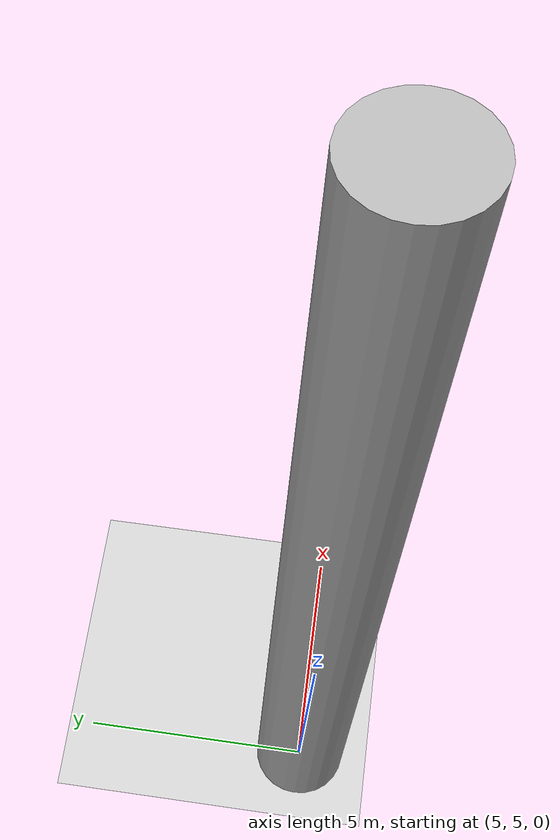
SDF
<?xml version="1.0" encoding="UTF-8"?>
<sdf version="1.9">
  <world name="my_world">
    <physics type="ode">
      <max_step_size>0.004</max_step_size>
      <real_time_factor>1.0</real_time_factor>
      <real_time_update_rate>250</real_time_update_rate>
    </physics>
    <gravity>0 0 -9.8</gravity>
    <magnetic_field>6e-06 2.3e-05 -4.2e-05</magnetic_field>
    <atmosphere type="adiabatic"/>
    <scene>
      <grid>false</grid>
      <ambient>0.4 0.4 0.4 1</ambient>
      <background>0.7 0.7 0.7 1</background>
      <shadows>true</shadows>
    </scene>
    <model name="ground_plane">
      <static>true</static>
      <link name="link">
        <collision name="collision">
          <geometry>
            <plane>
              <normal>0 0 1</normal>
              <size>1 1</size>
            </plane>
          </geometry>
          <surface>
            <friction>
              <ode/>
            </friction>
            <bounce/>
            <contact/>
          </surface>
        </collision>
        <visual name="visual">
          <geometry>
            <plane>
              <normal>0 0 1</normal>
              <size>500 500</size>
            </plane>
          </geometry>
          <material>
            <ambient>0.8 0.8 0.8 1</ambient>
            <diffuse>0.8 0.8 0.8 1</diffuse>
            <specular>0.8 0.8 0.8 1</specular>
          </material>
        </visual>
        <pose>0 0 0 0 -0 0</pose>
        <inertial>
          <pose>0 0 0 0 -0 0</pose>
          <mass>1</mass>
          <inertia>
            <ixx>1</ixx>
            <ixy>0</ixy>
            <ixz>0</ixz>
            <iyy>1</iyy>
            <iyz>0</iyz>
            <izz>1</izz>
          </inertia>
        </inertial>
        <enable_wind>false</enable_wind>
      </link>
      <pose>0 0 0 0 -0 0</pose>
      <self_collide>false</self_collide>
    </model>
    <model name="column20m">
      <static>true</static>
      <!-- center at z=10 so it stands on ground (0..20 m) -->
      <pose>5 5 10 0 0 0</pose>
      <link name="link">
        <collision name="col">
          <geometry>
            <cylinder>
              <radius>1</radius>
              <length>20</length>
            </cylinder>
          </geometry>
        </collision>
        <visual name="vis">
          <geometry>
            <cylinder>
              <radius>1</radius>
              <length>20</length>
            </cylinder>
          </geometry>
          <material>
            <diffuse>0.7 0.7 0.7 1</diffuse>
          </material>
        </visual>
      </link>
    </model>
    <light name="sunUTC" type="directional">
      <pose>0 0 500 0 -0 0</pose>
      <cast_shadows>true</cast_shadows>
      <intensity>1</intensity>
      <direction>0.001 0.625 -0.78</direction>
      <diffuse>0.904 0.904 0.904 1</diffuse>
      <specular>0.271 0.271 0.271 1</specular>
      <attenuation>
        <range>2000</range>
        <linear>0</linear>
        <constant>1</constant>
        <quadratic>0</quadratic>
      </attenuation>
      <spot>
        <inner_angle>0</inner_angle>
        <outer_angle>0</outer_angle>
        <falloff>0</falloff>
      </spot>
    </light>
    <spherical_coordinates>
  <surface_model>EARTH_WGS84</surface_model>
    <world_frame_orientation>ENU</world_frame_orientation>
    <latitude_deg>46.1349</latitude_deg>
    <longitude_deg>11.2425</longitude_deg>
    <elevation>964</elevation>
  </spherical_coordinates>
  </world>
</sdf>
